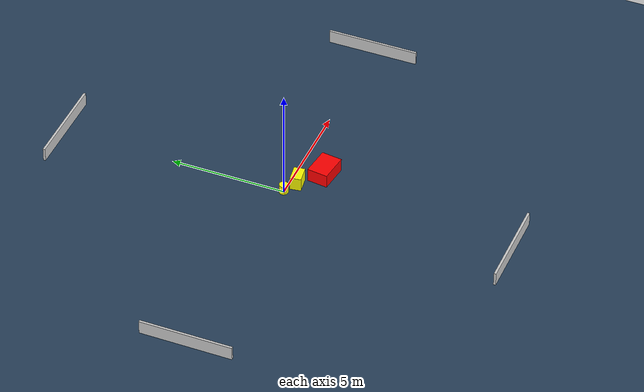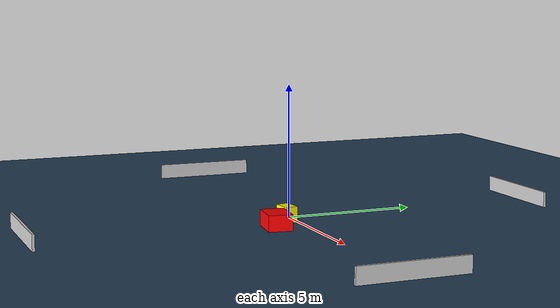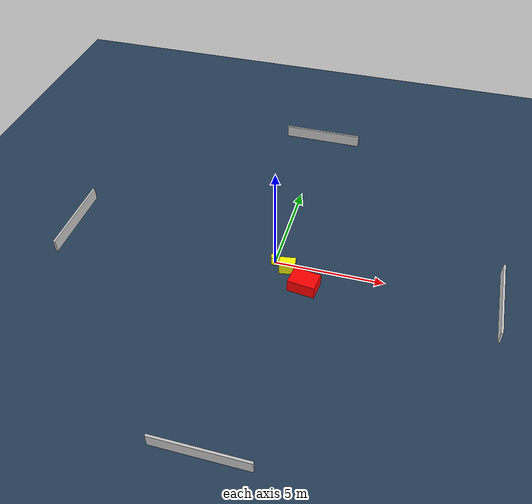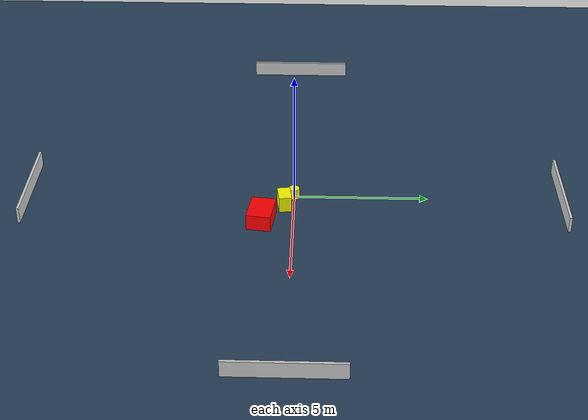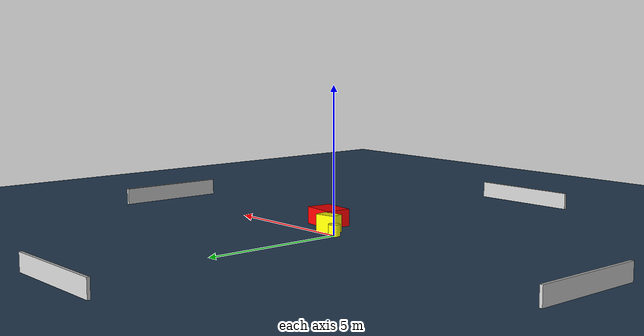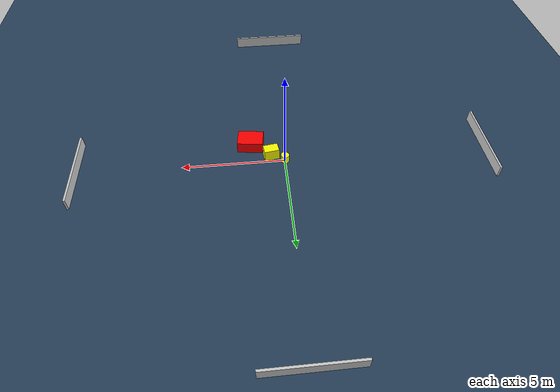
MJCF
<?xml version="1.0" ?>
<mujoco model="generated_environment">
  <option timestep="0.01" integrator="RK4" cone="elliptic"/>
  <default>
    <geom density="1"/>
  </default>
  <asset>
    <texture builtin="gradient" height="3072" name="skybox" rgb1="0.3 0.5 0.7" rgb2="0 0 0" type="skybox" width="512"/>
    <texture builtin="checker" height="300" name="groundplane" rgb1="0.2 0.3 0.4" rgb2="0.1 0.2 0.3" type="2d" width="300"/>
    <material name="groundplane" reflectance="0.2" texrepeat="5 5" texture="groundplane"/>
  </asset>
  <worldbody>
    <light dir="0 0 -1" directional="true" pos="0 0 1.5"/>
    <geom condim="3" friction="0.5 0.005 0.001" material="groundplane" name="floor" pos="0 0 0" size="0 0 0.05" type="plane"/>
    <body name="walls">
      <geom name="wall_1" condim="4" pos="-10.0 0.0 0.3" rgba="0.800000011920929 0.800000011920929 0.800000011920929 1.0" size="0.05 2.0 0.3" type="box"/>
      <geom name="wall_2" condim="4" pos="10.0 0.0 0.3" rgba="0.800000011920929 0.800000011920929 0.800000011920929 1.0" size="0.05 2.0 0.3" type="box"/>
      <geom name="wall_3" condim="4" pos="0.0 -10.0 0.3" rgba="0.800000011920929 0.800000011920929 0.800000011920929 1.0" size="2.0 0.05 0.3" type="box"/>
      <geom name="wall_4" condim="4" pos="0.0 10.0 0.3" rgba="0.800000011920929 0.800000011920929 0.800000011920929 1.0" size="2.0 0.05 0.3" type="box"/>
    </body>
    <body name="robot">
      <joint name="joint_x" type="slide" pos="0 0 0" axis="1 0 0"/>
      <joint name="joint_y" type="slide" pos="0 0 0" axis="0 1 0"/>
      <geom name="robot" type="cylinder" pos="0.0 0.0 0.2" size="0.2 0.2 0.0" mass="5.0" friction="1.0 0.005 0.0001" condim="4" rgba="1.0 1.0 0.0 1.0"/>
    </body>
    <body name="obstacle_1_movable">
      <geom name="obstacle_1_movable" condim="4" pos="0.6523709953335239 -0.34538512835261975 0.3" euler="0 0 278.2996900468102" friction="0.0 0.005 0.001" rgba="1.0 1.0 0.0 1.0" size="0.2370721428716176 0.3630934922595338 0.3" type="box" mass="0.1"/>
      <joint type="free"/>
    </body>
    <body name="obstacle_2_static">
      <geom name="obstacle_2_static" condim="4" pos="1.6191034413735337 -1.158638336799048 0.3" euler="0 0 352.81098822531794" friction="0.0 0.005 0.001" rgba="1.0 0.0 0.0 1.0" size="0.6255802958168994 0.45007975514106713 0.3" type="box"/>
    </body>
  </worldbody>
  <actuator>
    <motor name="actuator_x" joint="joint_x" gear="1" ctrlrange="-1 1"/>
    <motor name="actuator_y" joint="joint_y" gear="1" ctrlrange="-1 1"/>
  </actuator>
</mujoco>
